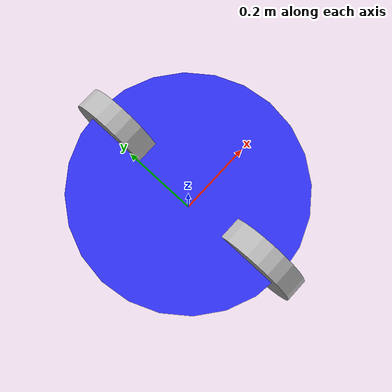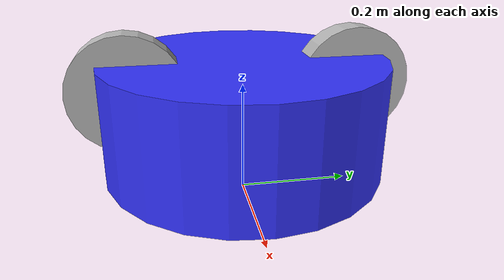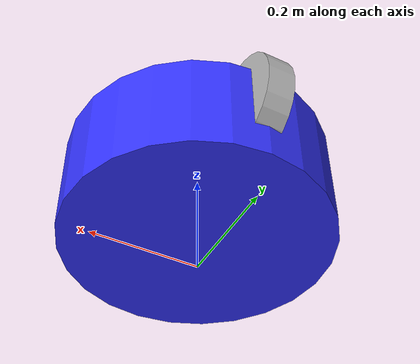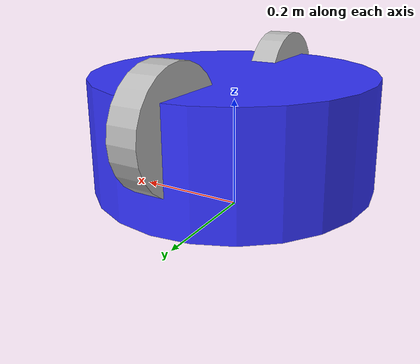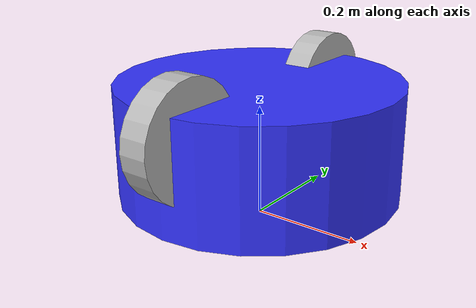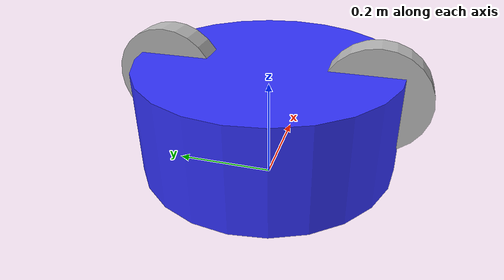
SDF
<?xml version="1.0"?>
<sdf version="1.10">
  <model name="smart_cleaner_robot">

    <pose>0 0 0.15 0 0 0</pose>

    <!-- BASE -->
    <link name="base_link">

      <inertial>
        <mass>5.0</mass>
        <inertia>
          <ixx>0.1</ixx>
          <iyy>0.1</iyy>
          <izz>0.1</izz>
          <ixy>0</ixy>
          <ixz>0</ixz>
          <iyz>0</iyz>
        </inertia>
      </inertial>

      <collision name="collision">
        <geometry>
          <cylinder>
            <radius>0.25</radius>
            <length>0.2</length>
          </cylinder>
        </geometry>
      </collision>

      <visual name="visual">
        <geometry>
          <cylinder>
            <radius>0.25</radius>
            <length>0.2</length>
          </cylinder>
        </geometry>
        <material>
          <ambient>0.1 0.1 0.8 1</ambient>
          <diffuse>0.2 0.2 1.0 1</diffuse>
        </material>
      </visual>

      <!-- LIDAR -->
      <sensor name="lidar" type="gpu_lidar">
        <pose>0 0 0.2 0 0 0</pose>
        <topic>scan</topic>
        <update_rate>10</update_rate>

        <ray>
          <scan>
            <horizontal>
              <samples>360</samples>
              <min_angle>-3.14</min_angle>
              <max_angle>3.14</max_angle>
            </horizontal>
          </scan>
          <range>
            <min>0.12</min>
            <max>8.0</max>
            <resolution>0.01</resolution>
          </range>
        </ray>

        <always_on>true</always_on>
        <visualize>true</visualize>
      </sensor>

    </link>

    <!-- RUOTA SINISTRA -->
    <link name="left_wheel">
      <pose>0 0.2 0.05 0 1.5708 0</pose>

      <collision name="collision">
        <geometry>
          <cylinder>
            <radius>0.1</radius>
            <length>0.05</length>
          </cylinder>
        </geometry>
      </collision>

      <visual name="visual">
        <geometry>
          <cylinder>
            <radius>0.1</radius>
            <length>0.05</length>
          </cylinder>
        </geometry>
      </visual>
    </link>

    <!-- RUOTA DESTRA -->
    <link name="right_wheel">
      <pose>0 -0.2 0.05 0 1.5708 0</pose>

      <collision name="collision">
        <geometry>
          <cylinder>
            <radius>0.1</radius>
            <length>0.05</length>
          </cylinder>
        </geometry>
      </collision>

      <visual name="visual">
        <geometry>
          <cylinder>
            <radius>0.1</radius>
            <length>0.05</length>
          </cylinder>
        </geometry>
      </visual>
    </link>

    <!-- JOINTS -->
    <joint name="left_wheel_joint" type="revolute">
      <parent>base_link</parent>
      <child>left_wheel</child>
      <axis>
        <xyz>0 1 0</xyz>
      </axis>
    </joint>

    <joint name="right_wheel_joint" type="revolute">
      <parent>base_link</parent>
      <child>right_wheel</child>
      <axis>
        <xyz>0 1 0</xyz>
      </axis>
    </joint>

    <!-- DIFF DRIVE -->
    <plugin filename="gz-sim-diff-drive-system"
            name="gz::sim::systems::DiffDrive">

      <left_joint>left_wheel_joint</left_joint>
      <right_joint>right_wheel_joint</right_joint>

      <wheel_separation>0.4</wheel_separation>
      <wheel_radius>0.1</wheel_radius>

      <topic>cmd_vel</topic>
      <odom_topic>odom</odom_topic>

    </plugin>

  </model>
</sdf>
